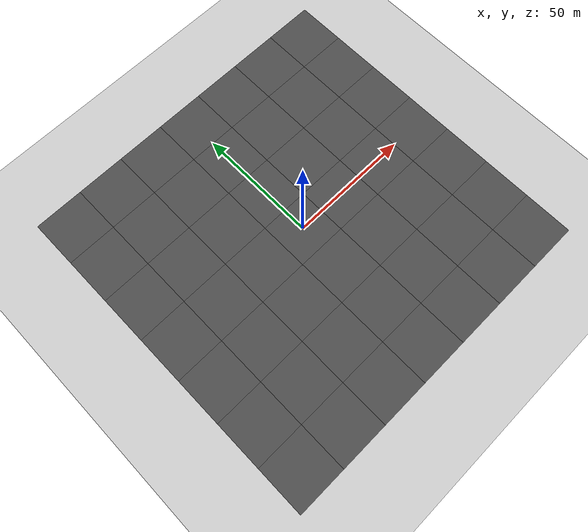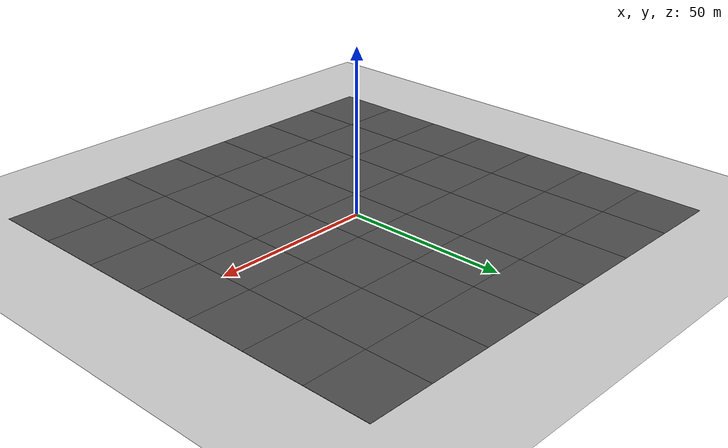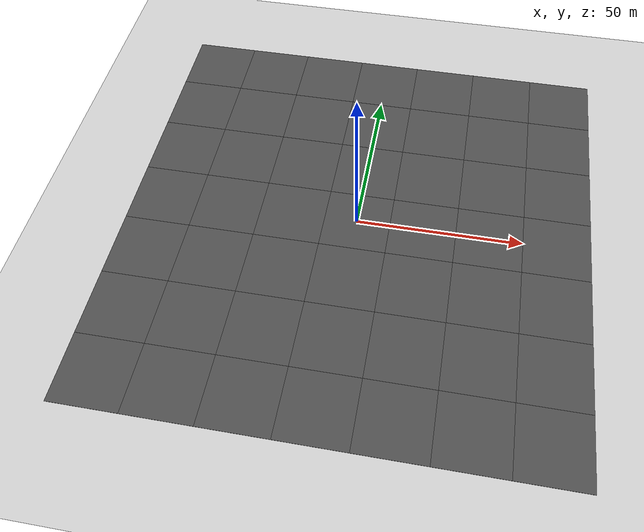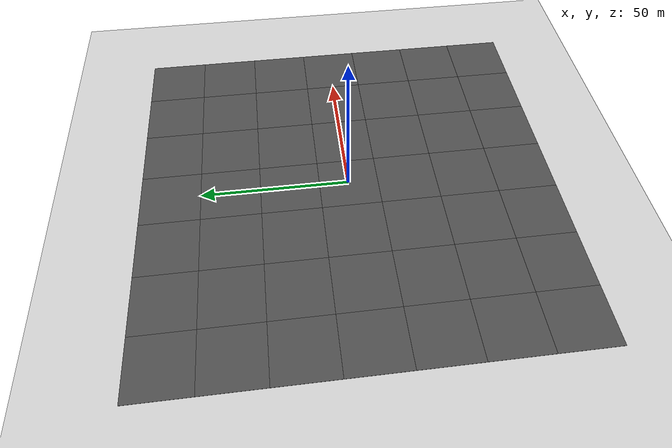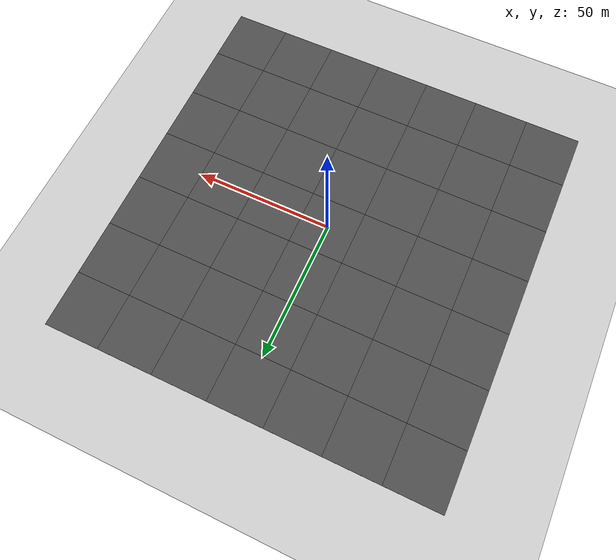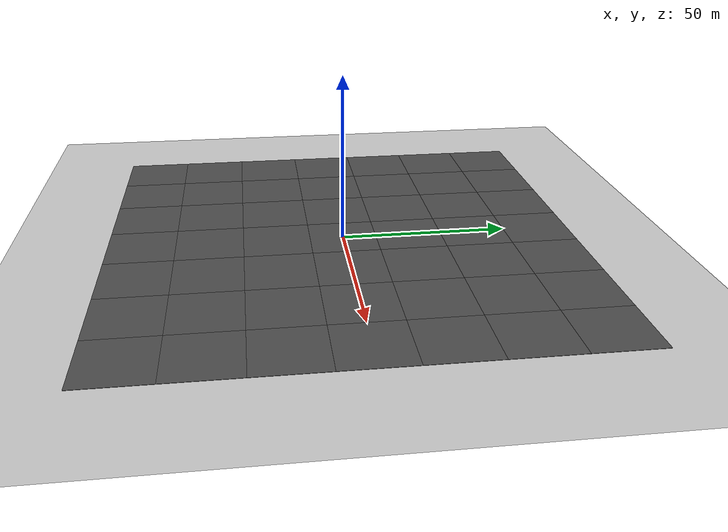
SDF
<sdf version="1.6">
 <world name="default">
  <light name="sun" type="directional">
   <pose>0 0 10 0 -0 0</pose>
   <diffuse>0.8 0.8 0.8 1</diffuse>
   <specular>0.1 0.1 0.1 1</specular>
   <attenuation>
    <range>1000</range>
    <constant>0.9</constant>
    <linear>0.01</linear>
    <quadratic>0.001</quadratic>
   </attenuation>
   <direction>-0.5 0.5 -1</direction>
  </light>
  <model name="ground_plane">
   <static>1</static>
   <link name="link">
    <collision name="collision">
     <geometry><plane><normal>0 0 1</normal><size>100 100</size></plane></geometry>
     <surface><friction><ode><mu>100</mu><mu2>50</mu2></ode></friction></surface>
    </collision>
    <visual name="visual">
     <cast_shadows>0</cast_shadows>
     <geometry><plane><normal>0 0 1</normal><size>100 100</size></plane></geometry>
     <material>
      <script><uri>file://media/materials/scripts/gazebo.material</uri><name>Gazebo/Grey</name></script>
     </material>
    </visual>
   </link>
  </model>
  <gravity>0 0 -9.8</gravity>
  <magnetic_field>6e-06 2.3e-05 -4.2e-05</magnetic_field>
  <atmosphere type="adiabatic"/>
  <physics name="default_physics" default="0" type="ode">
   <max_step_size>0.001</max_step_size>
   <real_time_factor>1</real_time_factor>
   <real_time_update_rate>1000</real_time_update_rate>
  </physics>
  <scene><ambient>0.4 0.4 0.4 1</ambient><background>0.7 0.7 0.7 1</background><shadows>1</shadows></scene>
  <spherical_coordinates>
   <surface_model>EARTH_WGS84</surface_model>
   <latitude_deg>0</latitude_deg>
   <longitude_deg>0</longitude_deg>
   <elevation>0</elevation>
   <heading_deg>0</heading_deg>
  </spherical_coordinates>
  <model name="asphalt_plane">
   <static>1</static>
   <link name="link">
    <collision name="collision"><geometry><box><size>20 20 0.1</size></box></geometry></collision>
    <visual name="visual">
     <cast_shadows>0</cast_shadows>
     <geometry><box><size>20 20 0.1</size></box></geometry>
     <material>
      <script>
       <uri>model://asphalt_plane/materials/scripts</uri>
       <uri>model://asphalt_plane/materials/textures</uri>
       <name>vrc/asphalt</name>
      </script>
     </material>
    </visual>
   </link>
  </model>
  <model name="asphalt_plane_0">
   <static>1</static>
   <link name="link">
    <collision name="collision"><geometry><box><size>20 20 0.1</size></box></geometry></collision>
    <visual name="visual">
     <cast_shadows>0</cast_shadows>
     <geometry><box><size>20 20 0.1</size></box></geometry>
     <material>
      <script>
       <uri>model://asphalt_plane/materials/scripts</uri>
       <uri>model://asphalt_plane/materials/textures</uri>
       <name>vrc/asphalt</name>
      </script>
     </material>
    </visual>
   </link>
   <pose>0 20 0 0 -0 0</pose>
  </model>
  <model name="asphalt_plane_1">
   <static>1</static>
   <link name="link">
    <collision name="collision"><geometry><box><size>20 20 0.1</size></box></geometry></collision>
    <visual name="visual">
     <cast_shadows>0</cast_shadows>
     <geometry><box><size>20 20 0.1</size></box></geometry>
     <material>
      <script>
       <uri>model://asphalt_plane/materials/scripts</uri>
       <uri>model://asphalt_plane/materials/textures</uri>
       <name>vrc/asphalt</name>
      </script>
     </material>
    </visual>
   </link>
   <pose>-20 20 0 0 -0 0</pose>
  </model>
  <model name="asphalt_plane_2">
   <static>1</static>
   <link name="link">
    <collision name="collision"><geometry><box><size>20 20 0.1</size></box></geometry></collision>
    <visual name="visual">
     <cast_shadows>0</cast_shadows>
     <geometry><box><size>20 20 0.1</size></box></geometry>
     <material>
      <script>
       <uri>model://asphalt_plane/materials/scripts</uri>
       <uri>model://asphalt_plane/materials/textures</uri>
       <name>vrc/asphalt</name>
      </script>
     </material>
    </visual>
   </link>
   <pose>-20 0 0 0 -0 0</pose>
  </model>
  <model name="asphalt_plane_3">
   <static>1</static>
   <link name="link">
    <collision name="collision"><geometry><box><size>20 20 0.1</size></box></geometry></collision>
    <visual name="visual">
     <cast_shadows>0</cast_shadows>
     <geometry><box><size>20 20 0.1</size></box></geometry>
     <material>
      <script>
       <uri>model://asphalt_plane/materials/scripts</uri>
       <uri>model://asphalt_plane/materials/textures</uri>
       <name>vrc/asphalt</name>
      </script>
     </material>
    </visual>
   </link>
   <pose>-20 -20 0 0 -0 0</pose>
  </model>
  <model name="asphalt_plane_4">
   <static>1</static>
   <link name="link">
    <collision name="collision"><geometry><box><size>20 20 0.1</size></box></geometry></collision>
    <visual name="visual">
     <cast_shadows>0</cast_shadows>
     <geometry><box><size>20 20 0.1</size></box></geometry>
     <material>
      <script>
       <uri>model://asphalt_plane/materials/scripts</uri>
       <uri>model://asphalt_plane/materials/textures</uri>
       <name>vrc/asphalt</name>
      </script>
     </material>
    </visual>
   </link>
   <pose>0 -20 0 0 -0 0</pose>
  </model>
  <model name="asphalt_plane_5">
   <static>1</static>
   <link name="link">
    <collision name="collision"><geometry><box><size>20 20 0.1</size></box></geometry></collision>
    <visual name="visual">
     <cast_shadows>0</cast_shadows>
     <geometry><box><size>20 20 0.1</size></box></geometry>
     <material>
      <script>
       <uri>model://asphalt_plane/materials/scripts</uri>
       <uri>model://asphalt_plane/materials/textures</uri>
       <name>vrc/asphalt</name>
      </script>
     </material>
    </visual>
   </link>
   <pose>20 20 0 0 -0 0</pose>
  </model>
  <model name="asphalt_plane_6">
   <static>1</static>
   <link name="link">
    <collision name="collision"><geometry><box><size>20 20 0.1</size></box></geometry></collision>
    <visual name="visual">
     <cast_shadows>0</cast_shadows>
     <geometry><box><size>20 20 0.1</size></box></geometry>
     <material>
      <script>
       <uri>model://asphalt_plane/materials/scripts</uri>
       <uri>model://asphalt_plane/materials/textures</uri>
       <name>vrc/asphalt</name>
      </script>
     </material>
    </visual>
   </link>
   <pose>20 0 0 0 -0 0</pose>
  </model>
  <model name="asphalt_plane_7">
   <static>1</static>
   <link name="link">
    <collision name="collision"><geometry><box><size>20 20 0.1</size></box></geometry></collision>
    <visual name="visual">
     <cast_shadows>0</cast_shadows>
     <geometry><box><size>20 20 0.1</size></box></geometry>
     <material>
      <script>
       <uri>model://asphalt_plane/materials/scripts</uri>
       <uri>model://asphalt_plane/materials/textures</uri>
       <name>vrc/asphalt</name>
      </script>
     </material>
    </visual>
   </link>
   <pose>20 -20 0 0 -0 0</pose>
  </model>
  <model name="asphalt_plane_8">
   <static>1</static>
   <link name="link">
    <collision name="collision"><geometry><box><size>20 20 0.1</size></box></geometry></collision>
    <visual name="visual">
     <cast_shadows>0</cast_shadows>
     <geometry><box><size>20 20 0.1</size></box></geometry>
     <material>
      <script>
       <uri>model://asphalt_plane/materials/scripts</uri>
       <uri>model://asphalt_plane/materials/textures</uri>
       <name>vrc/asphalt</name>
      </script>
     </material>
    </visual>
   </link>
   <pose>-40 40 0 0 -0 0</pose>
  </model>
  <model name="asphalt_plane_9">
   <static>1</static>
   <link name="link">
    <collision name="collision"><geometry><box><size>20 20 0.1</size></box></geometry></collision>
    <visual name="visual">
     <cast_shadows>0</cast_shadows>
     <geometry><box><size>20 20 0.1</size></box></geometry>
     <material>
      <script>
       <uri>model://asphalt_plane/materials/scripts</uri>
       <uri>model://asphalt_plane/materials/textures</uri>
       <name>vrc/asphalt</name>
      </script>
     </material>
    </visual>
   </link>
   <pose>-20 40 0 0 -0 0</pose>
  </model>
  <model name="asphalt_plane_10">
   <static>1</static>
   <link name="link">
    <collision name="collision"><geometry><box><size>20 20 0.1</size></box></geometry></collision>
    <visual name="visual">
     <cast_shadows>0</cast_shadows>
     <geometry><box><size>20 20 0.1</size></box></geometry>
     <material>
      <script>
       <uri>model://asphalt_plane/materials/scripts</uri>
       <uri>model://asphalt_plane/materials/textures</uri>
       <name>vrc/asphalt</name>
      </script>
     </material>
    </visual>
   </link>
   <pose>0 40 0 0 -0 0</pose>
  </model>
  <model name="asphalt_plane_11">
   <static>1</static>
   <link name="link">
    <collision name="collision"><geometry><box><size>20 20 0.1</size></box></geometry></collision>
    <visual name="visual">
     <cast_shadows>0</cast_shadows>
     <geometry><box><size>20 20 0.1</size></box></geometry>
     <material>
      <script>
       <uri>model://asphalt_plane/materials/scripts</uri>
       <uri>model://asphalt_plane/materials/textures</uri>
       <name>vrc/asphalt</name>
      </script>
     </material>
    </visual>
   </link>
   <pose>20 40 0 0 -0 0</pose>
  </model>
  <model name="asphalt_plane_12">
   <static>1</static>
   <link name="link">
    <collision name="collision"><geometry><box><size>20 20 0.1</size></box></geometry></collision>
    <visual name="visual">
     <cast_shadows>0</cast_shadows>
     <geometry><box><size>20 20 0.1</size></box></geometry>
     <material>
      <script>
       <uri>model://asphalt_plane/materials/scripts</uri>
       <uri>model://asphalt_plane/materials/textures</uri>
       <name>vrc/asphalt</name>
      </script>
     </material>
    </visual>
   </link>
   <pose>40 40 0 0 -0 0</pose>
  </model>
  <model name="asphalt_plane_13">
   <static>1</static>
   <link name="link">
    <collision name="collision"><geometry><box><size>20 20 0.1</size></box></geometry></collision>
    <visual name="visual">
     <cast_shadows>0</cast_shadows>
     <geometry><box><size>20 20 0.1</size></box></geometry>
     <material>
      <script>
       <uri>model://asphalt_plane/materials/scripts</uri>
       <uri>model://asphalt_plane/materials/textures</uri>
       <name>vrc/asphalt</name>
      </script>
     </material>
    </visual>
   </link>
   <pose>40 20 0 0 -0 0</pose>
  </model>
  <model name="asphalt_plane_14">
   <static>1</static>
   <link name="link">
    <collision name="collision"><geometry><box><size>20 20 0.1</size></box></geometry></collision>
    <visual name="visual">
     <cast_shadows>0</cast_shadows>
     <geometry><box><size>20 20 0.1</size></box></geometry>
     <material>
      <script>
       <uri>model://asphalt_plane/materials/scripts</uri>
       <uri>model://asphalt_plane/materials/textures</uri>
       <name>vrc/asphalt</name>
      </script>
     </material>
    </visual>
   </link>
   <pose>40 0 0 0 -0 0</pose>
  </model>
  <model name="asphalt_plane_15">
   <static>1</static>
   <link name="link">
    <collision name="collision"><geometry><box><size>20 20 0.1</size></box></geometry></collision>
    <visual name="visual">
     <cast_shadows>0</cast_shadows>
     <geometry><box><size>20 20 0.1</size></box></geometry>
     <material>
      <script>
       <uri>model://asphalt_plane/materials/scripts</uri>
       <uri>model://asphalt_plane/materials/textures</uri>
       <name>vrc/asphalt</name>
      </script>
     </material>
    </visual>
   </link>
   <pose>-40 20 0 0 -0 0</pose>
  </model>
  <model name="asphalt_plane_16">
   <static>1</static>
   <link name="link">
    <collision name="collision"><geometry><box><size>20 20 0.1</size></box></geometry></collision>
    <visual name="visual">
     <cast_shadows>0</cast_shadows>
     <geometry><box><size>20 20 0.1</size></box></geometry>
     <material>
      <script>
       <uri>model://asphalt_plane/materials/scripts</uri>
       <uri>model://asphalt_plane/materials/textures</uri>
       <name>vrc/asphalt</name>
      </script>
     </material>
    </visual>
   </link>
   <pose>-40 0 0 0 -0 0</pose>
  </model>
  <model name="asphalt_plane_17">
   <static>1</static>
   <link name="link">
    <collision name="collision"><geometry><box><size>20 20 0.1</size></box></geometry></collision>
    <visual name="visual">
     <cast_shadows>0</cast_shadows>
     <geometry><box><size>20 20 0.1</size></box></geometry>
     <material>
      <script>
       <uri>model://asphalt_plane/materials/scripts</uri>
       <uri>model://asphalt_plane/materials/textures</uri>
       <name>vrc/asphalt</name>
      </script>
     </material>
    </visual>
   </link>
   <pose>-40 -20 0 0 -0 0</pose>
  </model>
  <model name="asphalt_plane_18">
   <static>1</static>
   <link name="link">
    <collision name="collision"><geometry><box><size>20 20 0.1</size></box></geometry></collision>
    <visual name="visual">
     <cast_shadows>0</cast_shadows>
     <geometry><box><size>20 20 0.1</size></box></geometry>
     <material>
      <script>
       <uri>model://asphalt_plane/materials/scripts</uri>
       <uri>model://asphalt_plane/materials/textures</uri>
       <name>vrc/asphalt</name>
      </script>
     </material>
    </visual>
   </link>
   <pose>-40 -40 0 0 -0 0</pose>
  </model>
  <model name="asphalt_plane_19">
   <static>1</static>
   <link name="link">
    <collision name="collision"><geometry><box><size>20 20 0.1</size></box></geometry></collision>
    <visual name="visual">
     <cast_shadows>0</cast_shadows>
     <geometry><box><size>20 20 0.1</size></box></geometry>
     <material>
      <script>
       <uri>model://asphalt_plane/materials/scripts</uri>
       <uri>model://asphalt_plane/materials/textures</uri>
       <name>vrc/asphalt</name>
      </script>
     </material>
    </visual>
   </link>
   <pose>-20 -40 0 0 -0 0</pose>
  </model>
  <model name="asphalt_plane_20">
   <static>1</static>
   <link name="link">
    <collision name="collision"><geometry><box><size>20 20 0.1</size></box></geometry></collision>
    <visual name="visual">
     <cast_shadows>0</cast_shadows>
     <geometry><box><size>20 20 0.1</size></box></geometry>
     <material>
      <script>
       <uri>model://asphalt_plane/materials/scripts</uri>
       <uri>model://asphalt_plane/materials/textures</uri>
       <name>vrc/asphalt</name>
      </script>
     </material>
    </visual>
   </link>
   <pose>0 -40 0 0 -0 0</pose>
  </model>
  <model name="asphalt_plane_21">
   <static>1</static>
   <link name="link">
    <collision name="collision"><geometry><box><size>20 20 0.1</size></box></geometry></collision>
    <visual name="visual">
     <cast_shadows>0</cast_shadows>
     <geometry><box><size>20 20 0.1</size></box></geometry>
     <material>
      <script>
       <uri>model://asphalt_plane/materials/scripts</uri>
       <uri>model://asphalt_plane/materials/textures</uri>
       <name>vrc/asphalt</name>
      </script>
     </material>
    </visual>
   </link>
   <pose>20 -40 0 0 -0 0</pose>
  </model>
  <model name="asphalt_plane_22">
   <static>1</static>
   <link name="link">
    <collision name="collision"><geometry><box><size>20 20 0.1</size></box></geometry></collision>
    <visual name="visual">
     <cast_shadows>0</cast_shadows>
     <geometry><box><size>20 20 0.1</size></box></geometry>
     <material>
      <script>
       <uri>model://asphalt_plane/materials/scripts</uri>
       <uri>model://asphalt_plane/materials/textures</uri>
       <name>vrc/asphalt</name>
      </script>
     </material>
    </visual>
   </link>
   <pose>40 -20 0 0 -0 0</pose>
  </model>
  <model name="asphalt_plane_23">
   <static>1</static>
   <link name="link">
    <collision name="collision"><geometry><box><size>20 20 0.1</size></box></geometry></collision>
    <visual name="visual">
     <cast_shadows>0</cast_shadows>
     <geometry><box><size>20 20 0.1</size></box></geometry>
     <material>
      <script>
       <uri>model://asphalt_plane/materials/scripts</uri>
       <uri>model://asphalt_plane/materials/textures</uri>
       <name>vrc/asphalt</name>
      </script>
     </material>
    </visual>
   </link>
   <pose>40 -40 0 0 -0 0</pose>
  </model>
  <model name="asphalt_plane_24">
   <static>1</static>
   <link name="link">
    <collision name="collision"><geometry><box><size>20 20 0.1</size></box></geometry></collision>
    <visual name="visual">
     <cast_shadows>0</cast_shadows>
     <geometry><box><size>20 20 0.1</size></box></geometry>
     <material>
      <script>
       <uri>model://asphalt_plane/materials/scripts</uri>
       <uri>model://asphalt_plane/materials/textures</uri>
       <name>vrc/asphalt</name>
      </script>
     </material>
    </visual>
   </link>
   <pose>60 -60 0 0 -0 0</pose>
  </model>
  <model name="asphalt_plane_25">
   <static>1</static>
   <link name="link">
    <collision name="collision"><geometry><box><size>20 20 0.1</size></box></geometry></collision>
    <visual name="visual">
     <cast_shadows>0</cast_shadows>
     <geometry><box><size>20 20 0.1</size></box></geometry>
     <material>
      <script>
       <uri>model://asphalt_plane/materials/scripts</uri>
       <uri>model://asphalt_plane/materials/textures</uri>
       <name>vrc/asphalt</name>
      </script>
     </material>
    </visual>
   </link>
   <pose>60 -40 0 0 -0 0</pose>
  </model>
  <model name="asphalt_plane_26">
   <static>1</static>
   <link name="link">
    <collision name="collision"><geometry><box><size>20 20 0.1</size></box></geometry></collision>
    <visual name="visual">
     <cast_shadows>0</cast_shadows>
     <geometry><box><size>20 20 0.1</size></box></geometry>
     <material>
      <script>
       <uri>model://asphalt_plane/materials/scripts</uri>
       <uri>model://asphalt_plane/materials/textures</uri>
       <name>vrc/asphalt</name>
      </script>
     </material>
    </visual>
   </link>
   <pose>60 -20 0 0 -0 0</pose>
  </model>
  <model name="asphalt_plane_27">
   <static>1</static>
   <link name="link">
    <collision name="collision"><geometry><box><size>20 20 0.1</size></box></geometry></collision>
    <visual name="visual">
     <cast_shadows>0</cast_shadows>
     <geometry><box><size>20 20 0.1</size></box></geometry>
     <material>
      <script>
       <uri>model://asphalt_plane/materials/scripts</uri>
       <uri>model://asphalt_plane/materials/textures</uri>
       <name>vrc/asphalt</name>
      </script>
     </material>
    </visual>
   </link>
   <pose>60 0 0 0 -0 0</pose>
  </model>
  <model name="asphalt_plane_28">
   <static>1</static>
   <link name="link">
    <collision name="collision"><geometry><box><size>20 20 0.1</size></box></geometry></collision>
    <visual name="visual">
     <cast_shadows>0</cast_shadows>
     <geometry><box><size>20 20 0.1</size></box></geometry>
     <material>
      <script>
       <uri>model://asphalt_plane/materials/scripts</uri>
       <uri>model://asphalt_plane/materials/textures</uri>
       <name>vrc/asphalt</name>
      </script>
     </material>
    </visual>
   </link>
   <pose>60 20 0 0 -0 0</pose>
  </model>
  <model name="asphalt_plane_29">
   <static>1</static>
   <link name="link">
    <collision name="collision"><geometry><box><size>20 20 0.1</size></box></geometry></collision>
    <visual name="visual">
     <cast_shadows>0</cast_shadows>
     <geometry><box><size>20 20 0.1</size></box></geometry>
     <material>
      <script>
       <uri>model://asphalt_plane/materials/scripts</uri>
       <uri>model://asphalt_plane/materials/textures</uri>
       <name>vrc/asphalt</name>
      </script>
     </material>
    </visual>
   </link>
   <pose>60 40 0 0 -0 0</pose>
  </model>
  <model name="asphalt_plane_30">
   <static>1</static>
   <link name="link">
    <collision name="collision"><geometry><box><size>20 20 0.1</size></box></geometry></collision>
    <visual name="visual">
     <cast_shadows>0</cast_shadows>
     <geometry><box><size>20 20 0.1</size></box></geometry>
     <material>
      <script>
       <uri>model://asphalt_plane/materials/scripts</uri>
       <uri>model://asphalt_plane/materials/textures</uri>
       <name>vrc/asphalt</name>
      </script>
     </material>
    </visual>
   </link>
   <pose>60 60 0 0 -0 0</pose>
  </model>
  <model name="asphalt_plane_31">
   <static>1</static>
   <link name="link">
    <collision name="collision"><geometry><box><size>20 20 0.1</size></box></geometry></collision>
    <visual name="visual">
     <cast_shadows>0</cast_shadows>
     <geometry><box><size>20 20 0.1</size></box></geometry>
     <material>
      <script>
       <uri>model://asphalt_plane/materials/scripts</uri>
       <uri>model://asphalt_plane/materials/textures</uri>
       <name>vrc/asphalt</name>
      </script>
     </material>
    </visual>
   </link>
   <pose>40 60 0 0 -0 0</pose>
  </model>
  <model name="asphalt_plane_32">
   <static>1</static>
   <link name="link">
    <collision name="collision"><geometry><box><size>20 20 0.1</size></box></geometry></collision>
    <visual name="visual">
     <cast_shadows>0</cast_shadows>
     <geometry><box><size>20 20 0.1</size></box></geometry>
     <material>
      <script>
       <uri>model://asphalt_plane/materials/scripts</uri>
       <uri>model://asphalt_plane/materials/textures</uri>
       <name>vrc/asphalt</name>
      </script>
     </material>
    </visual>
   </link>
   <pose>20 60 0 0 -0 0</pose>
  </model>
  <model name="asphalt_plane_33">
   <static>1</static>
   <link name="link">
    <collision name="collision"><geometry><box><size>20 20 0.1</size></box></geometry></collision>
    <visual name="visual">
     <cast_shadows>0</cast_shadows>
     <geometry><box><size>20 20 0.1</size></box></geometry>
     <material>
      <script>
       <uri>model://asphalt_plane/materials/scripts</uri>
       <uri>model://asphalt_plane/materials/textures</uri>
       <name>vrc/asphalt</name>
      </script>
     </material>
    </visual>
   </link>
   <pose>0 60 0 0 -0 0</pose>
  </model>
  <model name="asphalt_plane_34">
   <static>1</static>
   <link name="link">
    <collision name="collision"><geometry><box><size>20 20 0.1</size></box></geometry></collision>
    <visual name="visual">
     <cast_shadows>0</cast_shadows>
     <geometry><box><size>20 20 0.1</size></box></geometry>
     <material>
      <script>
       <uri>model://asphalt_plane/materials/scripts</uri>
       <uri>model://asphalt_plane/materials/textures</uri>
       <name>vrc/asphalt</name>
      </script>
     </material>
    </visual>
   </link>
   <pose>-20 60 0 0 -0 0</pose>
  </model>
  <model name="asphalt_plane_35">
   <static>1</static>
   <link name="link">
    <collision name="collision"><geometry><box><size>20 20 0.1</size></box></geometry></collision>
    <visual name="visual">
     <cast_shadows>0</cast_shadows>
     <geometry><box><size>20 20 0.1</size></box></geometry>
     <material>
      <script>
       <uri>model://asphalt_plane/materials/scripts</uri>
       <uri>model://asphalt_plane/materials/textures</uri>
       <name>vrc/asphalt</name>
      </script>
     </material>
    </visual>
   </link>
   <pose>-40 60 0 0 -0 0</pose>
  </model>
  <model name="asphalt_plane_36">
   <static>1</static>
   <link name="link">
    <collision name="collision"><geometry><box><size>20 20 0.1</size></box></geometry></collision>
    <visual name="visual">
     <cast_shadows>0</cast_shadows>
     <geometry><box><size>20 20 0.1</size></box></geometry>
     <material>
      <script>
       <uri>model://asphalt_plane/materials/scripts</uri>
       <uri>model://asphalt_plane/materials/textures</uri>
       <name>vrc/asphalt</name>
      </script>
     </material>
    </visual>
   </link>
   <pose>-60 60 0 0 -0 0</pose>
  </model>
  <model name="asphalt_plane_37">
   <static>1</static>
   <link name="link">
    <collision name="collision"><geometry><box><size>20 20 0.1</size></box></geometry></collision>
    <visual name="visual">
     <cast_shadows>0</cast_shadows>
     <geometry><box><size>20 20 0.1</size></box></geometry>
     <material>
      <script>
       <uri>model://asphalt_plane/materials/scripts</uri>
       <uri>model://asphalt_plane/materials/textures</uri>
       <name>vrc/asphalt</name>
      </script>
     </material>
    </visual>
   </link>
   <pose>-60 40 0 0 -0 0</pose>
  </model>
  <model name="asphalt_plane_38">
   <static>1</static>
   <link name="link">
    <collision name="collision"><geometry><box><size>20 20 0.1</size></box></geometry></collision>
    <visual name="visual">
     <cast_shadows>0</cast_shadows>
     <geometry><box><size>20 20 0.1</size></box></geometry>
     <material>
      <script>
       <uri>model://asphalt_plane/materials/scripts</uri>
       <uri>model://asphalt_plane/materials/textures</uri>
       <name>vrc/asphalt</name>
      </script>
     </material>
    </visual>
   </link>
   <pose>-60 20 0 0 -0 0</pose>
  </model>
  <model name="asphalt_plane_39">
   <static>1</static>
   <link name="link">
    <collision name="collision"><geometry><box><size>20 20 0.1</size></box></geometry></collision>
    <visual name="visual">
     <cast_shadows>0</cast_shadows>
     <geometry><box><size>20 20 0.1</size></box></geometry>
     <material>
      <script>
       <uri>model://asphalt_plane/materials/scripts</uri>
       <uri>model://asphalt_plane/materials/textures</uri>
       <name>vrc/asphalt</name>
      </script>
     </material>
    </visual>
   </link>
   <pose>-60 0 0 0 -0 0</pose>
  </model>
  <model name="asphalt_plane_40">
   <static>1</static>
   <link name="link">
    <collision name="collision"><geometry><box><size>20 20 0.1</size></box></geometry></collision>
    <visual name="visual">
     <cast_shadows>0</cast_shadows>
     <geometry><box><size>20 20 0.1</size></box></geometry>
     <material>
      <script>
       <uri>model://asphalt_plane/materials/scripts</uri>
       <uri>model://asphalt_plane/materials/textures</uri>
       <name>vrc/asphalt</name>
      </script>
     </material>
    </visual>
   </link>
   <pose>-60 -20 0 0 -0 0</pose>
  </model>
  <model name="asphalt_plane_41">
   <static>1</static>
   <link name="link">
    <collision name="collision"><geometry><box><size>20 20 0.1</size></box></geometry></collision>
    <visual name="visual">
     <cast_shadows>0</cast_shadows>
     <geometry><box><size>20 20 0.1</size></box></geometry>
     <material>
      <script>
       <uri>model://asphalt_plane/materials/scripts</uri>
       <uri>model://asphalt_plane/materials/textures</uri>
       <name>vrc/asphalt</name>
      </script>
     </material>
    </visual>
   </link>
   <pose>-60 -40 0 0 -0 0</pose>
  </model>
  <model name="asphalt_plane_42">
   <static>1</static>
   <link name="link">
    <collision name="collision"><geometry><box><size>20 20 0.1</size></box></geometry></collision>
    <visual name="visual">
     <cast_shadows>0</cast_shadows>
     <geometry><box><size>20 20 0.1</size></box></geometry>
     <material>
      <script>
       <uri>model://asphalt_plane/materials/scripts</uri>
       <uri>model://asphalt_plane/materials/textures</uri>
       <name>vrc/asphalt</name>
      </script>
     </material>
    </visual>
   </link>
   <pose>-60 -60 0 0 -0 0</pose>
  </model>
  <model name="asphalt_plane_43">
   <static>1</static>
   <link name="link">
    <collision name="collision"><geometry><box><size>20 20 0.1</size></box></geometry></collision>
    <visual name="visual">
     <cast_shadows>0</cast_shadows>
     <geometry><box><size>20 20 0.1</size></box></geometry>
     <material>
      <script>
       <uri>model://asphalt_plane/materials/scripts</uri>
       <uri>model://asphalt_plane/materials/textures</uri>
       <name>vrc/asphalt</name>
      </script>
     </material>
    </visual>
   </link>
   <pose>-40 -60 0 0 -0 0</pose>
  </model>
  <model name="asphalt_plane_44">
   <static>1</static>
   <link name="link">
    <collision name="collision"><geometry><box><size>20 20 0.1</size></box></geometry></collision>
    <visual name="visual">
     <cast_shadows>0</cast_shadows>
     <geometry><box><size>20 20 0.1</size></box></geometry>
     <material>
      <script>
       <uri>model://asphalt_plane/materials/scripts</uri>
       <uri>model://asphalt_plane/materials/textures</uri>
       <name>vrc/asphalt</name>
      </script>
     </material>
    </visual>
   </link>
   <pose>-20 -60 0 0 -0 0</pose>
  </model>
  <model name="asphalt_plane_45">
   <static>1</static>
   <link name="link">
    <collision name="collision"><geometry><box><size>20 20 0.1</size></box></geometry></collision>
    <visual name="visual">
     <cast_shadows>0</cast_shadows>
     <geometry><box><size>20 20 0.1</size></box></geometry>
     <material>
      <script>
       <uri>model://asphalt_plane/materials/scripts</uri>
       <uri>model://asphalt_plane/materials/textures</uri>
       <name>vrc/asphalt</name>
      </script>
     </material>
    </visual>
   </link>
   <pose>0 -60 0 0 -0 0</pose>
  </model>
  <model name="asphalt_plane_46">
   <static>1</static>
   <link name="link">
    <collision name="collision"><geometry><box><size>20 20 0.1</size></box></geometry></collision>
    <visual name="visual">
     <cast_shadows>0</cast_shadows>
     <geometry><box><size>20 20 0.1</size></box></geometry>
     <material>
      <script>
       <uri>model://asphalt_plane/materials/scripts</uri>
       <uri>model://asphalt_plane/materials/textures</uri>
       <name>vrc/asphalt</name>
      </script>
     </material>
    </visual>
   </link>
   <pose>20 -60 0 0 -0 0</pose>
  </model>
  <model name="asphalt_plane_47">
   <static>1</static>
   <link name="link">
    <collision name="collision"><geometry><box><size>20 20 0.1</size></box></geometry></collision>
    <visual name="visual">
     <cast_shadows>0</cast_shadows>
     <geometry><box><size>20 20 0.1</size></box></geometry>
     <material>
      <script>
       <uri>model://asphalt_plane/materials/scripts</uri>
       <uri>model://asphalt_plane/materials/textures</uri>
       <name>vrc/asphalt</name>
      </script>
     </material>
    </visual>
   </link>
   <pose>40 -60 0 0 -0 0</pose>
  </model>
 </world>
</sdf>
